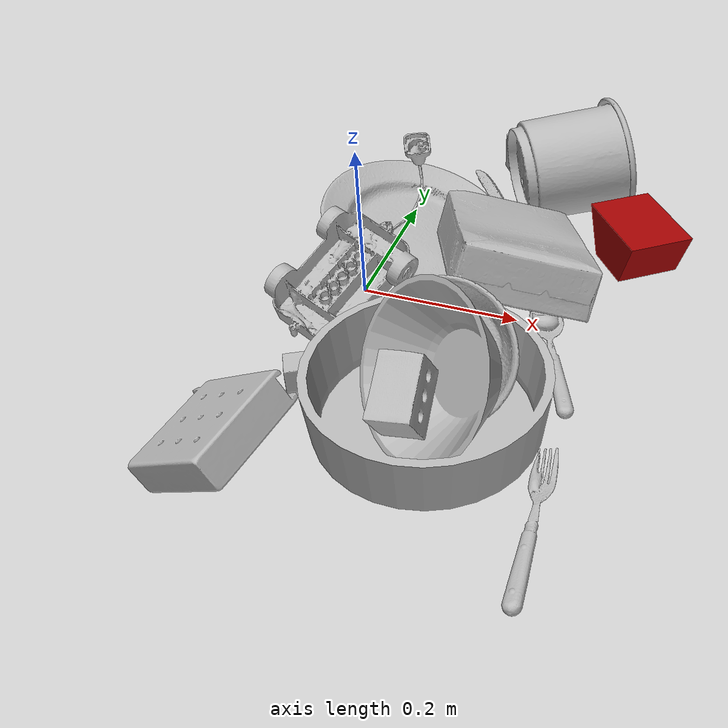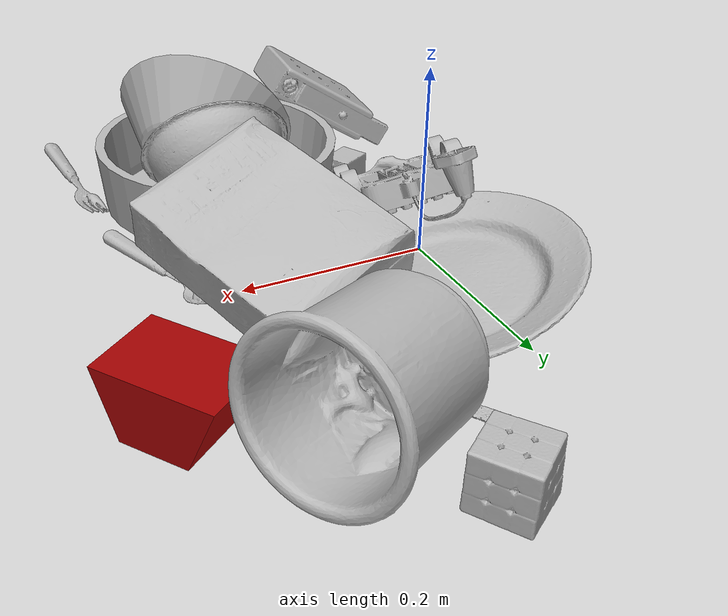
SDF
<sdf version="1.4">
  <world name="default">
    <light name="light1" type="point">
      <pose>0 0 1 0 0 0</pose>
      <diffuse>3 3 3 1</diffuse>
      <specular>3 3 3 1</specular>
    </light>
    <light name="light2" type="point">
      <pose>0 0.5 2 0 0 0</pose>
      <diffuse>1 1 1 1</diffuse>
      <specular>1 1 1 1</specular>
    </light>
    <light name="light3" type="point">
      <pose>0 0.5 2 0 0 0</pose>
      <diffuse>3 3 3 1</diffuse>
      <specular>3 3 3 1</specular>
    </light>
    <scene>
      <ambient>0.7 0.7 0.7</ambient>
    </scene>
    <model name="plate1">
      <link name="link_plate1">
        <collision name="default">
          <geometry>
            <mesh>
              <uri>model://pan_tefal/collision_meshes/collision.obj</uri>
              <scale>1.0 1.0 1.0</scale>
            </mesh>
          </geometry>
          <surface>
            <friction>
              <ode>
                <mu>0.5</mu>
                <mu2>0.5</mu2>
              </ode>
            </friction>
          <contact>
        <ode>
            <max_vel>0</max_vel>
            <min_depth>0.0001</min_depth>
            <kp>1e8</kp>
        </ode>
    </contact></surface>
        </collision>
        <visual name="default">
          <geometry>
            <mesh>
              <uri>model://pan_tefal/visual_meshes/visual.dae</uri>
              <scale>1.0 1.0 1.0</scale>
            </mesh>
          </geometry>
        </visual>
        <inertial>
          <mass>0.7575002908706665</mass>
          <pose>-0.00018002181604970247 3.278869189671241e-05 -0.00851493701338768 0.0008190213215647545 -0.0003301469994364688 -0.3318472895374236</pose>
          <inertia>
            <ixx>0.0052289874</ixx>
            <iyy>0.0052627004</iyy>
            <izz>0.009625561</izz>
            <ixy>0</ixy>
            <ixz>0</ixz>
            <iyz>0</iyz>
          </inertia>
        </inertial>
      </link>
      <pose>0.15007005631923676 -0.1940983682870865 0.038050319999456406 1.5188314379990008e-05 4.264251445294124e-06 2.711950077179422</pose>
    </model>
    <model name="plate2">
      <link name="link_plate2">
        <collision name="default">
          <geometry>
            <mesh>
              <uri>model://plate/collision_meshes/collision.obj</uri>
              <scale>1.0 1.0 1.0</scale>
            </mesh>
          </geometry>
          <surface>
            <friction>
              <ode>
                <mu>0.5</mu>
                <mu2>0.5</mu2>
              </ode>
            </friction>
          <contact>
        <ode>
            <max_vel>0</max_vel>
            <min_depth>0.0001</min_depth>
            <kp>1e8</kp>
        </ode>
    </contact></surface>
        </collision>
        <visual name="default">
          <geometry>
            <mesh>
              <uri>model://plate/visual_meshes/visual.dae</uri>
              <scale>1.0 1.0 1.0</scale>
            </mesh>
          </geometry>
        </visual>
        <inertial>
          <mass>0.24305373430252075</mass>
          <pose>-0.0006044657784514129 0.0002782582014333457 -0.0010561988456174731 0.0022187349237576767 -0.0032255124479001144 0.4526250186623527</pose>
          <inertia>
            <ixx>0.00113701</ixx>
            <iyy>0.0011261352</iyy>
            <izz>0.0022238225</izz>
            <ixy>0</ixy>
            <ixz>0</ixz>
            <iyz>0</iyz>
          </inertia>
        </inertial>
      </link>
      <pose>0.03345474228262901 0.10969341546297073 0.033575695008039474 -0.060592230176130954 0.25826706067121163 -0.3492383464311152</pose>
    </model>
    <model name="bowl1">
      <link name="link_bowl1">
        <collision name="default">
          <geometry>
            <mesh>
              <uri>model://bowl/collision_meshes/collision.obj</uri>
              <scale>1.0 1.0 1.0</scale>
            </mesh>
          </geometry>
          <surface>
            <friction>
              <ode>
                <mu>0.5</mu>
                <mu2>0.5</mu2>
              </ode>
            </friction>
          <contact>
        <ode>
            <max_vel>0</max_vel>
            <min_depth>0.0001</min_depth>
            <kp>1e8</kp>
        </ode>
    </contact></surface>
        </collision>
        <visual name="default">
          <geometry>
            <mesh>
              <uri>model://bowl/visual_meshes/visual.dae</uri>
              <scale>1.0 1.0 1.0</scale>
            </mesh>
          </geometry>
        </visual>
        <inertial>
          <mass>0.08028676360845566</mass>
          <pose>0.00020445045083761215 -0.0010302026057615876 -0.0008042661938816309 -0.015764207515600946 0.014546645366850262 0.7140316236369888</pose>
          <inertia>
            <ixx>0.00018442512</ixx>
            <iyy>0.00018030431</iyy>
            <izz>0.0003102665</izz>
            <ixy>0</ixy>
            <ixz>0</ixz>
            <iyz>0</iyz>
          </inertia>
        </inertial>
      </link>
      <pose>0.16509415209293365 -0.14379295706748962 0.06539290398359299 -0.36651440570499416 -1.0014426123957743 1.8569445286058914</pose>
    </model>
    <model name="bowl2">
      <link name="link_bowl2">
        <collision name="default">
          <geometry>
            <mesh>
              <uri>model://bowl_a/collision_meshes/collision.obj</uri>
              <scale>1.0 1.0 1.0</scale>
            </mesh>
          </geometry>
          <surface>
            <friction>
              <ode>
                <mu>0.5</mu>
                <mu2>0.5</mu2>
              </ode>
            </friction>
          <contact>
        <ode>
            <max_vel>0</max_vel>
            <min_depth>0.0001</min_depth>
            <kp>1e8</kp>
        </ode>
    </contact></surface>
        </collision>
        <visual name="default">
          <geometry>
            <mesh>
              <uri>model://bowl_a/visual_meshes/visual.dae</uri>
              <scale>1.0 1.0 1.0</scale>
            </mesh>
          </geometry>
        </visual>
        <inertial>
          <mass>0.2016693353652954</mass>
          <pose>0.000278673687716946 4.731108856503852e-05 -0.0013765295734629035 -0.0009805301894988984 -0.0010938186520021772 -0.19123883274053055</pose>
          <inertia>
            <ixx>0.00057416206</ixx>
            <iyy>0.000577687</iyy>
            <izz>0.0010211696</izz>
            <ixy>0</ixy>
            <ixz>0</ixz>
            <iyz>0</iyz>
          </inertia>
        </inertial>
      </link>
      <pose>0.16910232603549957 -0.19915805757045746 0.08043864369392395 -0.935987759687949 0.631236979609347 2.8751591086104966</pose>
    </model>
    <model name="silverware1">
      <link name="link_silverware1">
        <collision name="default">
          <geometry>
            <mesh>
              <uri>model://spoon/collision_meshes/collision.obj</uri>
              <scale>1.0 1.0 1.0</scale>
            </mesh>
          </geometry>
          <surface>
            <friction>
              <ode>
                <mu>0.5</mu>
                <mu2>0.5</mu2>
              </ode>
            </friction>
          <contact>
        <ode>
            <max_vel>0</max_vel>
            <min_depth>0.0001</min_depth>
            <kp>1e8</kp>
        </ode>
    </contact></surface>
        </collision>
        <visual name="default">
          <geometry>
            <mesh>
              <uri>model://spoon/visual_meshes/visual.dae</uri>
              <scale>1.0 1.0 1.0</scale>
            </mesh>
          </geometry>
        </visual>
        <inertial>
          <mass>0.023438503965735435</mass>
          <pose>-0.005526317749172449 -0.0016034176805987954 -0.000727164966519922 0.03521671071703309 -0.03906584129558259 0.006150610048623938</pose>
          <inertia>
            <ixx>1.3036873e-06</ixx>
            <iyy>8.918272e-05</iyy>
            <izz>8.982564e-05</izz>
            <ixy>0</ixy>
            <ixz>0</ixz>
            <iyz>0</iyz>
          </inertia>
        </inertial>
      </link>
      <pose>0.2560994029045105 -0.059060316532850266 0.00838526338338852 0.006731858768154002 0.026892988298142944 1.924968903541568</pose>
    </model>
    <model name="box1">
      <link name="link_box1">
        <collision name="default">
          <geometry>
            <mesh>
              <uri>model://cracker_box/collision_meshes/collision.obj</uri>
              <scale>1.0 1.0 1.0</scale>
            </mesh>
          </geometry>
          <surface>
            <friction>
              <ode>
                <mu>0.5</mu>
                <mu2>0.5</mu2>
              </ode>
            </friction>
          <contact>
        <ode>
            <max_vel>0</max_vel>
            <min_depth>0.0001</min_depth>
            <kp>1e8</kp>
        </ode>
    </contact></surface>
        </collision>
        <visual name="default">
          <geometry>
            <mesh>
              <uri>model://cracker_box/visual_meshes/visual.dae</uri>
              <scale>1.0 1.0 1.0</scale>
            </mesh>
          </geometry>
        </visual>
        <inertial>
          <mass>3.1733922958374023</mass>
          <pose>0.0009464119793847203 0.00025434247800149024 -0.0017029535956680775 -0.00031620768891544627 -0.011106485874643508 0.0025467963987026074</pose>
          <inertia>
            <ixx>0.008071693</ixx>
            <iyy>0.013327951</iyy>
            <izz>0.01902021</izz>
            <ixy>0</ixy>
            <ixz>0</ixz>
            <iyz>0</iyz>
          </inertia>
        </inertial>
      </link>
      <pose>0.18388082087039948 0.03711367025971413 0.07698622345924377 0.26807915083570527 0.26447434027622896 1.9692405429549784</pose>
    </model>
    <model name="box2">
      <link name="link_box2">
        <collision name="default">
          <geometry>
            <mesh>
              <uri>model://rubiks_cube/collision_meshes/collision.obj</uri>
              <scale>1.0 1.0 1.0</scale>
            </mesh>
          </geometry>
          <surface>
            <friction>
              <ode>
                <mu>0.5</mu>
                <mu2>0.5</mu2>
              </ode>
            </friction>
          <contact>
        <ode>
            <max_vel>0</max_vel>
            <min_depth>0.0001</min_depth>
            <kp>1e8</kp>
        </ode>
    </contact></surface>
        </collision>
        <visual name="default">
          <geometry>
            <mesh>
              <uri>model://rubiks_cube/visual_meshes/visual.dae</uri>
              <scale>1.0 1.0 1.0</scale>
            </mesh>
          </geometry>
        </visual>
        <inertial>
          <mass>0.15184316039085388</mass>
          <pose>2.6721041649580002e-05 5.2569666877388954e-05 -7.264316536748083e-06 -0.0546734747968529 -0.09813870099197174 -0.03445517010401606</pose>
          <inertia>
            <ixx>8.390353e-05</ixx>
            <iyy>8.351226e-05</iyy>
            <izz>8.459882e-05</izz>
            <ixy>0</ixy>
            <ixz>0</ixz>
            <iyz>0</iyz>
          </inertia>
        </inertial>
      </link>
      <pose>0.12949059903621674 0.35140669345855713 0.028679005801677704 -3.2301181931079236e-08 1.8204445541922278e-08 -2.5198100776441184</pose>
    </model>
    <model name="cup1">
      <link name="link_cup1">
        <collision name="default">
          <geometry>
            <mesh>
              <uri>model://f_cups/collision_meshes/collision.obj</uri>
              <scale>2.0 2.0 2.0</scale>
            </mesh>
          </geometry>
          <surface>
            <friction>
              <ode>
                <mu>0.5</mu>
                <mu2>0.5</mu2>
              </ode>
            </friction>
          <contact>
        <ode>
            <max_vel>0</max_vel>
            <min_depth>0.0001</min_depth>
            <kp>1e8</kp>
        </ode>
    </contact></surface>
        </collision>
        <visual name="default">
          <geometry>
            <mesh>
              <uri>model://f_cups/visual_meshes/visual.dae</uri>
              <scale>2.0 2.0 2.0</scale>
            </mesh>
          </geometry>
        </visual>
        <inertial>
          <mass>0.31799542903900146</mass>
          <pose>-0.006342939101159573 -0.0012480145087465644 -0.00731107359752059 0.7862267301708457 -0.2607925342729672 -0.18237300859269054</pose>
          <inertia>
            <ixx>0.0011956966</ixx>
            <iyy>0.0012542997</iyy>
            <izz>0.001305761</izz>
            <ixy>0</ixy>
            <ixz>0</ixz>
            <iyz>0</iyz>
          </inertia>
        </inertial>
      </link>
      <pose>0.20273026823997498 0.2642572224140167 0.07450976222753525 1.460027115217746 0.5728758524025173 2.0034206036496056</pose>
    </model>
    <model name="silverware2">
      <link name="link_silverware2">
        <collision name="default">
          <geometry>
            <mesh>
              <uri>model://knife/collision_meshes/collision.obj</uri>
              <scale>1.0 1.0 1.0</scale>
            </mesh>
          </geometry>
          <surface>
            <friction>
              <ode>
                <mu>0.5</mu>
                <mu2>0.5</mu2>
              </ode>
            </friction>
          <contact>
        <ode>
            <max_vel>0</max_vel>
            <min_depth>0.0001</min_depth>
            <kp>1e8</kp>
        </ode>
    </contact></surface>
        </collision>
        <visual name="default">
          <geometry>
            <mesh>
              <uri>model://knife/visual_meshes/visual.dae</uri>
              <scale>1.0 1.0 1.0</scale>
            </mesh>
          </geometry>
        </visual>
        <inertial>
          <mass>0.01713745854794979</mass>
          <pose>-0.02378525771200657 0.0015275123296305537 5.062021591584198e-05 0.07305753061421462 0.017248419855317693 -0.007409818535045194</pose>
          <inertia>
            <ixx>4.864306e-07</ixx>
            <iyy>6.583934e-05</iyy>
            <izz>6.5996e-05</izz>
            <ixy>0</ixy>
            <ixz>0</ixz>
            <iyz>0</iyz>
          </inertia>
        </inertial>
      </link>
      <pose>0.11878488212823868 0.23021124303340912 0.007946612313389778 -0.02388027412143291 -0.01454283313393263 2.154909998375889</pose>
    </model>
    <model name="silverware3">
      <link name="link_silverware3">
        <collision name="default">
          <geometry>
            <mesh>
              <uri>model://fork/collision_meshes/collision.obj</uri>
              <scale>1.0 1.0 1.0</scale>
            </mesh>
          </geometry>
          <surface>
            <friction>
              <ode>
                <mu>0.5</mu>
                <mu2>0.5</mu2>
              </ode>
            </friction>
          <contact>
        <ode>
            <max_vel>0</max_vel>
            <min_depth>0.0001</min_depth>
            <kp>1e8</kp>
        </ode>
    </contact></surface>
        </collision>
        <visual name="default">
          <geometry>
            <mesh>
              <uri>model://fork/visual_meshes/visual.dae</uri>
              <scale>1.0 1.0 1.0</scale>
            </mesh>
          </geometry>
        </visual>
        <inertial>
          <mass>0.012323527596890926</mass>
          <pose>-0.029570043087005615 0.00046588233090005815 0.0003218861238565296 -0.013551145261099908 -0.01097783717976447 0.01445390335153306</pose>
          <inertia>
            <ixx>4.3200933e-07</ixx>
            <iyy>3.2173175e-05</iyy>
            <izz>3.236641e-05</izz>
            <ixy>0</ixy>
            <ixz>0</ixz>
            <iyz>0</iyz>
          </inertia>
        </inertial>
      </link>
      <pose>0.29065877199172974 -0.2998298704624176 0.00570264458656311 -0.17989740981326768 0.025057956520234778 1.6114438560173832</pose>
    </model>
    <model name="toy1">
      <link name="link_toy1">
        <collision name="default">
          <geometry>
            <mesh>
              <uri>model://foam_brick/collision_meshes/collision.obj</uri>
              <scale>1.0 1.0 1.0</scale>
            </mesh>
          </geometry>
          <surface>
            <friction>
              <ode>
                <mu>0.5</mu>
                <mu2>0.5</mu2>
              </ode>
            </friction>
          <contact>
        <ode>
            <max_vel>0</max_vel>
            <min_depth>0.0001</min_depth>
            <kp>1e8</kp>
        </ode>
    </contact></surface>
        </collision>
        <visual name="default">
          <geometry>
            <mesh>
              <uri>model://foam_brick/visual_meshes/visual.dae</uri>
              <scale>1.0 1.0 1.0</scale>
            </mesh>
          </geometry>
        </visual>
        <inertial>
          <mass>0.22379855811595917</mass>
          <pose>-0.00025224717683158815 0.0003458436403889209 -0.0002532101352699101 -0.29401565582258504 0.017274431815567964 -0.0007449878256007176</pose>
          <inertia>
            <ixx>9.775939e-05</ixx>
            <iyy>0.00015607789</iyy>
            <izz>0.00015806146</izz>
            <ixy>0</ixy>
            <ixz>0</ixz>
            <iyz>0</iyz>
          </inertia>
        </inertial>
      </link>
      <pose>0.13369522988796234 -0.22265711426734924 0.061456114053726196 1.36811735047193 -0.47447917533987105 1.6735082174651856</pose>
    </model>
    <model name="toy2">
      <link name="link_toy2">
        <collision name="default">
          <geometry>
            <mesh>
              <uri>model://g_lego_duplo/collision_meshes/collision.obj</uri>
              <scale>1.0 1.0 1.0</scale>
            </mesh>
          </geometry>
          <surface>
            <friction>
              <ode>
                <mu>0.5</mu>
                <mu2>0.5</mu2>
              </ode>
            </friction>
          <contact>
        <ode>
            <max_vel>0</max_vel>
            <min_depth>0.0001</min_depth>
            <kp>1e8</kp>
        </ode>
    </contact></surface>
        </collision>
        <visual name="default">
          <geometry>
            <mesh>
              <uri>model://g_lego_duplo/visual_meshes/visual.dae</uri>
              <scale>1.0 1.0 1.0</scale>
            </mesh>
          </geometry>
        </visual>
        <inertial>
          <mass>0.5124852657318115</mass>
          <pose>-0.05004769191145897 0.0017554633086547256 0.003880675183609128 0.010962987419080987 0.0381082502855883 -0.09653031806986456</pose>
          <inertia>
            <ixx>0.0007425969</ixx>
            <iyy>0.0022451086</iyy>
            <izz>0.0028087152</izz>
            <ixy>0</ixy>
            <ixz>0</ixz>
            <iyz>0</iyz>
          </inertia>
        </inertial>
      </link>
      <pose>0.013788582757115364 -0.0007297620177268982 0.08042806386947632 -2.865409178905757 -0.38904720017704175 1.1859674186356761</pose>
    </model>
    <model name="toy3">
      <link name="link_toy3">
        <collision name="default">
          <geometry>
            <mesh>
              <uri>model://nine_hole_peg_test/collision_meshes/collision.obj</uri>
              <scale>1.0 1.0 1.0</scale>
            </mesh>
          </geometry>
          <surface>
            <friction>
              <ode>
                <mu>0.5</mu>
                <mu2>0.5</mu2>
              </ode>
            </friction>
          <contact>
        <ode>
            <max_vel>0</max_vel>
            <min_depth>0.0001</min_depth>
            <kp>1e8</kp>
        </ode>
    </contact></surface>
        </collision>
        <visual name="default">
          <geometry>
            <mesh>
              <uri>model://nine_hole_peg_test/visual_meshes/visual.dae</uri>
              <scale>1.0 1.0 1.0</scale>
            </mesh>
          </geometry>
        </visual>
        <inertial>
          <mass>0.8364987969398499</mass>
          <pose>-0.004617386497557163 -0.009647614322602749 2.6460691515239887e-05 -0.0014666793226822761 0.000719418076932787 -0.634241593386854</pose>
          <inertia>
            <ixx>0.0013080036</ixx>
            <iyy>0.0012212693</iyy>
            <izz>0.0022920077</izz>
            <ixy>0</ixy>
            <ixz>0</ixz>
            <iyz>0</iyz>
          </inertia>
        </inertial>
      </link>
      <pose>-0.03589118644595146 -0.31345435976982117 0.04998219758272171 -0.5631831920066255 -0.08611325794462805 1.3910345617445685</pose>
    </model>
    <model name="toy4">
      <link name="link_toy4">
        <collision name="default">
          <geometry>
            <mesh>
              <uri>model://b_lego_duplo/collision_meshes/collision.obj</uri>
              <scale>1.0 1.0 1.0</scale>
            </mesh>
          </geometry>
          <surface>
            <friction>
              <ode>
                <mu>0.5</mu>
                <mu2>0.5</mu2>
              </ode>
            </friction>
          <contact>
        <ode>
            <max_vel>0</max_vel>
            <min_depth>0.0001</min_depth>
            <kp>1e8</kp>
        </ode>
    </contact></surface>
        </collision>
        <visual name="default">
          <geometry>
            <mesh>
              <uri>model://b_lego_duplo/visual_meshes/visual.dae</uri>
              <scale>1.0 1.0 1.0</scale>
            </mesh>
          </geometry>
        </visual>
        <inertial>
          <mass>0.0316849946975708</mass>
          <pose>-0.00011053055641241372 -9.15226701181382e-06 0.0019294292433187366 -0.03749472548528336 -0.026354304906346077 0.4518915128408031</pose>
          <inertia>
            <ixx>6.4845735e-06</ixx>
            <iyy>6.5281647e-06</iyy>
            <izz>5.777544e-06</izz>
            <ixy>0</ixy>
            <ixz>0</ixz>
            <iyz>0</iyz>
          </inertia>
        </inertial>
      </link>
      <pose>-0.0017677663126960397 -0.1766291856765747 0.01613614335656166 1.563647844732993 -0.0017201565673307627 2.064832625007686</pose>
    </model>
    <model name="toy5">
      <link name="link_toy5">
        <collision name="default">
          <geometry>
            <mesh>
              <uri>model://prism/collision_meshes/collision.obj</uri>
              <scale>1.0 1.0 1.0</scale>
            </mesh>
          </geometry>
          <surface>
            <friction>
              <ode>
                <mu>0.5</mu>
                <mu2>0.5</mu2>
              </ode>
            </friction>
          <contact>
        <ode>
            <max_vel>0</max_vel>
            <min_depth>0.0001</min_depth>
            <kp>1e8</kp>
        </ode>
    </contact></surface>
        </collision>
        <visual name="default">
          <geometry>
            <mesh>
              <uri>model://prism/visual_meshes/visual.dae</uri>
              <scale>1.0 1.0 1.0</scale>
            </mesh>
          </geometry>
        </visual>
        <inertial>
          <mass>0.34586653113365173</mass>
          <pose>-9.853597293840721e-05 -4.96157269935793e-07 -0.0033869100734591484 0.0 0.006559180766136186 0.0</pose>
          <inertia>
            <ixx>0.00031214024</ixx>
            <iyy>0.00037722557</iyy>
            <izz>0.00046205617</izz>
            <ixy>0</ixy>
            <ixz>0</ixz>
            <iyz>0</iyz>
          </inertia>
        </inertial>
      </link>
      <pose>0.31910058856010437 0.16764122247695923 0.03144687041640282 -3.1415923225787923 0.016647113988820707 2.19660492722882</pose>
    </model>
  <physics type="ode">
      <max_contacts>50</max_contacts>
      <ode>
        <solver>
          <type>quick</type>
          <iters>75</iters>
        </solver>
        <constraints>
          <contact_max_correcting_vel>0</contact_max_correcting_vel>
          <contact_surface_layer>0</contact_surface_layer>
        </constraints>
      </ode>
    </physics></world>
</sdf>
